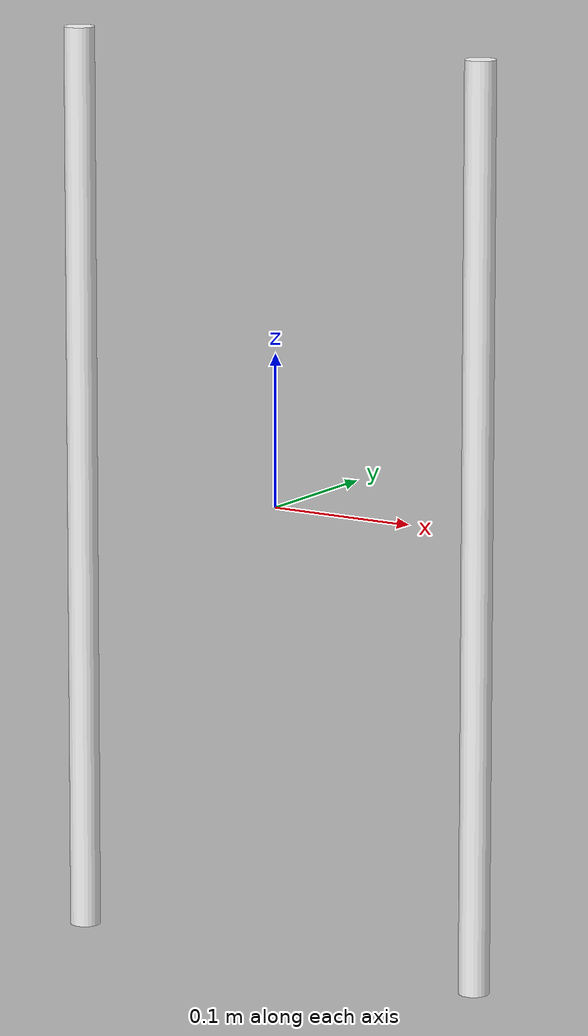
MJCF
<?xml version="1.0" encoding="utf-8"?>
<!-- from https://github.com/vikashplus/mj_envs/tree/master/mj_envs/hand_manipulation_suite/assets -->
<!-- Information about door can be found in this paper: https://arxiv.org/pdf/1709.10087.pdf -->

<mujoco model="door_frame">
  <asset>
    <texture file="../textures/light-wood.png" type="cube" name="light-wood" />
    <texture file="../textures/dark-wood.png" type="cube" name="dark-wood" />
    <texture file="../textures/brass-ambra.png" type="cube" name="metal" />
    <material name="MatMetal" texture="metal" specular="1" shininess="0.3" rgba="0.9 0.9 0.9 1" />
    <material name="MatDarkWood" texture="dark-wood" texrepeat="3 3" specular="0.4" shininess="0.1" />
    <material name="MatLightWood" texture="light-wood" texrepeat="3 3" specular="0.4" shininess="0.1" />
  </asset>
    <worldbody>
      <body>
        <body name="object">
          <body name="frame" pos="0 0 0">
              <inertial pos="0.3 0 0" quat="0.5 0.5 0.5 0.5" mass="7.85398" diaginertia="0.923301 0.764585 0.168533" />
              <geom size="0.01 0.3" pos="0.15 0 0" type="cylinder" rgba="1 1 1 1" group="0" name="r_frame"/>
              <geom size="0.01 0.3" pos="-0.15 0 0" type="cylinder" rgba="1 1 1 1" group="0" name="l_frame"/>
          </body>
        </body>
        <site name="bottom_site" pos="0 0 -0.3" rgba="0 0 0 0" size="0.005"/>
        <site name="top_site" pos="0 0 0.3" rgba="0 0 0 0" size="0.005"/>
        <site name="horizontal_radius_site" pos="0.15 0 0" rgba="0 0 0 0" size="0.1"/>
      </body>
    </worldbody>
</mujoco>
